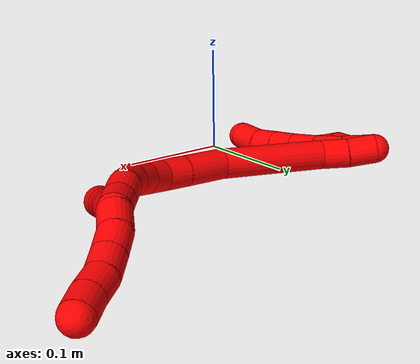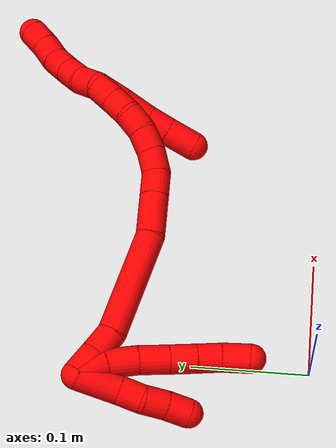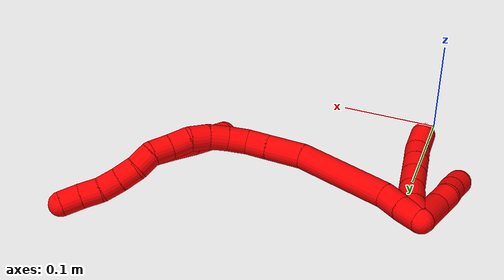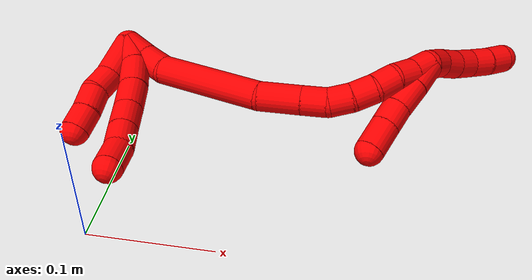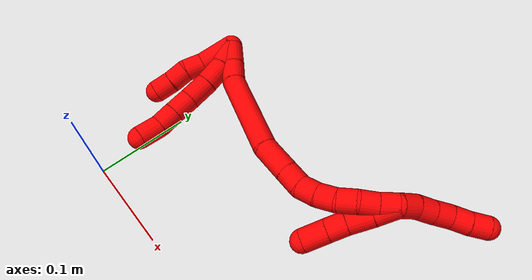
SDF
<sdf version="1.7">
 <world name="default">
  <model name="2">
   <static>0</static>
   <link name="2">
    <collision name="collision-cylinder-e_1_2_8">
     <pose>0.006587 0.002177 -0.011429 -2.95335 0.515194 -2.45344</pose>
     <geometry><cylinder><radius>0.0125</radius><length>0.02674</length></cylinder></geometry>
     <surface>
      <friction><ode><mu>1.16</mu><mu2>1.16</mu2><slip1>0</slip1><slip2>0</slip2></ode></friction>
      <contact><ode><kp>1e+06</kp><kd>1</kd><max_vel>0</max_vel><min_depth>0.001</min_depth></ode></contact>
     </surface>
    </collision>
    <visual name="visual-cylinder-e_1_2_8">
     <pose>0.006587 0.002177 -0.011429 -2.95335 0.515194 -2.45344</pose>
     <geometry><cylinder><radius>0.0125</radius><length>0.02674</length></cylinder></geometry>
     <material><ambient>1 0 0 1</ambient></material>
    </visual>
    <collision name="collision-cylinder-e_2_8_9">
     <pose>0.017212 0.004337 -0.036058 3.14023 0.29683 3.13248</pose>
     <geometry><cylinder><radius>0.0125</radius><length>0.027607</length></cylinder></geometry>
     <surface>
      <friction><ode><mu>1.16</mu><mu2>1.16</mu2><slip1>0</slip1><slip2>0</slip2></ode></friction>
      <contact><ode><kp>1e+06</kp><kd>1</kd><max_vel>0</max_vel><min_depth>0.001</min_depth></ode></contact>
     </surface>
    </collision>
    <visual name="visual-cylinder-e_2_8_9">
     <pose>0.017212 0.004337 -0.036058 3.14023 0.29683 3.13248</pose>
     <geometry><cylinder><radius>0.0125</radius><length>0.027607</length></cylinder></geometry>
     <material><ambient>1 0 0 1</ambient></material>
    </visual>
    <collision name="collision-cylinder-e_3_9_10">
     <pose>0.024337 0.003219 -0.062146 3.05645 0.234308 2.44705</pose>
     <geometry><cylinder><radius>0.0125</radius><length>0.026596</length></cylinder></geometry>
     <surface>
      <friction><ode><mu>1.16</mu><mu2>1.16</mu2><slip1>0</slip1><slip2>0</slip2></ode></friction>
      <contact><ode><kp>1e+06</kp><kd>1</kd><max_vel>0</max_vel><min_depth>0.001</min_depth></ode></contact>
     </surface>
    </collision>
    <visual name="visual-cylinder-e_3_9_10">
     <pose>0.024337 0.003219 -0.062146 3.05645 0.234308 2.44705</pose>
     <geometry><cylinder><radius>0.0125</radius><length>0.026596</length></cylinder></geometry>
     <material><ambient>1 0 0 1</ambient></material>
    </visual>
    <collision name="collision-cylinder-e_4_10_11">
     <pose>0.030264 0.00081 -0.086075 3.02362 0.25003 2.26303</pose>
     <geometry><cylinder><radius>0.0125</radius><length>0.022951</length></cylinder></geometry>
     <surface>
      <friction><ode><mu>1.16</mu><mu2>1.16</mu2><slip1>0</slip1><slip2>0</slip2></ode></friction>
      <contact><ode><kp>1e+06</kp><kd>1</kd><max_vel>0</max_vel><min_depth>0.001</min_depth></ode></contact>
     </surface>
    </collision>
    <visual name="visual-cylinder-e_4_10_11">
     <pose>0.030264 0.00081 -0.086075 3.02362 0.25003 2.26303</pose>
     <geometry><cylinder><radius>0.0125</radius><length>0.022951</length></cylinder></geometry>
     <material><ambient>1 0 0 1</ambient></material>
    </visual>
    <collision name="collision-cylinder-e_5_11_12">
     <pose>0.035826 -0.001516 -0.107429 3.04329 0.256923 2.41386</pose>
     <geometry><cylinder><radius>0.0125</radius><length>0.021429</length></cylinder></geometry>
     <surface>
      <friction><ode><mu>1.16</mu><mu2>1.16</mu2><slip1>0</slip1><slip2>0</slip2></ode></friction>
      <contact><ode><kp>1e+06</kp><kd>1</kd><max_vel>0</max_vel><min_depth>0.001</min_depth></ode></contact>
     </surface>
    </collision>
    <visual name="visual-cylinder-e_5_11_12">
     <pose>0.035826 -0.001516 -0.107429 3.04329 0.256923 2.41386</pose>
     <geometry><cylinder><radius>0.0125</radius><length>0.021429</length></cylinder></geometry>
     <material><ambient>1 0 0 1</ambient></material>
    </visual>
    <collision name="collision-cylinder-e_6_12_6">
     <pose>0.041182 -0.006345 -0.129177 2.81984 0.215057 1.17396</pose>
     <geometry><cylinder><radius>0.0125</radius><length>0.024677</length></cylinder></geometry>
     <surface>
      <friction><ode><mu>1.16</mu><mu2>1.16</mu2><slip1>0</slip1><slip2>0</slip2></ode></friction>
      <contact><ode><kp>1e+06</kp><kd>1</kd><max_vel>0</max_vel><min_depth>0.001</min_depth></ode></contact>
     </surface>
    </collision>
    <visual name="visual-cylinder-e_6_12_6">
     <pose>0.041182 -0.006345 -0.129177 2.81984 0.215057 1.17396</pose>
     <geometry><cylinder><radius>0.0125</radius><length>0.024677</length></cylinder></geometry>
     <material><ambient>1 0 0 1</ambient></material>
    </visual>
    <collision name="collision-cylinder-e_1_2_13">
     <pose>-0.002371 -0.002314 -0.018689 3.01841 -0.125273 -1.58767</pose>
     <geometry><cylinder><radius>0.0125</radius><length>0.03796</length></cylinder></geometry>
     <surface>
      <friction><ode><mu>1.16</mu><mu2>1.16</mu2><slip1>0</slip1><slip2>0</slip2></ode></friction>
      <contact><ode><kp>1e+06</kp><kd>1</kd><max_vel>0</max_vel><min_depth>0.001</min_depth></ode></contact>
     </surface>
    </collision>
    <visual name="visual-cylinder-e_1_2_13">
     <pose>-0.002371 -0.002314 -0.018689 3.01841 -0.125273 -1.58767</pose>
     <geometry><cylinder><radius>0.0125</radius><length>0.03796</length></cylinder></geometry>
     <material><ambient>1 0 0 1</ambient></material>
    </visual>
    <collision name="collision-cylinder-e_2_13_14">
     <pose>-0.006031 -0.00786 -0.047244 2.82501 -0.123405 -0.738566</pose>
     <geometry><cylinder><radius>0.0125</radius><length>0.020924</length></cylinder></geometry>
     <surface>
      <friction><ode><mu>1.16</mu><mu2>1.16</mu2><slip1>0</slip1><slip2>0</slip2></ode></friction>
      <contact><ode><kp>1e+06</kp><kd>1</kd><max_vel>0</max_vel><min_depth>0.001</min_depth></ode></contact>
     </surface>
    </collision>
    <visual name="visual-cylinder-e_2_13_14">
     <pose>-0.006031 -0.00786 -0.047244 2.82501 -0.123405 -0.738566</pose>
     <geometry><cylinder><radius>0.0125</radius><length>0.020924</length></cylinder></geometry>
     <material><ambient>1 0 0 1</ambient></material>
    </visual>
    <collision name="collision-cylinder-e_3_14_15">
     <pose>-0.007892 -0.011283 -0.067432 3.12311 -0.05548 -2.49856</pose>
     <geometry><cylinder><radius>0.0125</radius><length>0.020681</length></cylinder></geometry>
     <surface>
      <friction><ode><mu>1.16</mu><mu2>1.16</mu2><slip1>0</slip1><slip2>0</slip2></ode></friction>
      <contact><ode><kp>1e+06</kp><kd>1</kd><max_vel>0</max_vel><min_depth>0.001</min_depth></ode></contact>
     </surface>
    </collision>
    <visual name="visual-cylinder-e_3_14_15">
     <pose>-0.007892 -0.011283 -0.067432 3.12311 -0.05548 -2.49856</pose>
     <geometry><cylinder><radius>0.0125</radius><length>0.020681</length></cylinder></geometry>
     <material><ambient>1 0 0 1</ambient></material>
    </visual>
    <collision name="collision-cylinder-e_4_15_5">
     <pose>-0.009837 -0.012439 -0.087834 3.04607 -0.134673 -1.90843</pose>
     <geometry><cylinder><radius>0.0125</radius><length>0.020436</length></cylinder></geometry>
     <surface>
      <friction><ode><mu>1.16</mu><mu2>1.16</mu2><slip1>0</slip1><slip2>0</slip2></ode></friction>
      <contact><ode><kp>1e+06</kp><kd>1</kd><max_vel>0</max_vel><min_depth>0.001</min_depth></ode></contact>
     </surface>
    </collision>
    <visual name="visual-cylinder-e_4_15_5">
     <pose>-0.009837 -0.012439 -0.087834 3.04607 -0.134673 -1.90843</pose>
     <geometry><cylinder><radius>0.0125</radius><length>0.020436</length></cylinder></geometry>
     <material><ambient>1 0 0 1</ambient></material>
    </visual>
    <collision name="collision-cylinder-e_1_2_16">
     <pose>0.009196 0.004979 -0.006583 -2.49408 0.839332 -1.85191</pose>
     <geometry><cylinder><radius>0.0125</radius><length>0.024715</length></cylinder></geometry>
     <surface>
      <friction><ode><mu>1.16</mu><mu2>1.16</mu2><slip1>0</slip1><slip2>0</slip2></ode></friction>
      <contact><ode><kp>1e+06</kp><kd>1</kd><max_vel>0</max_vel><min_depth>0.001</min_depth></ode></contact>
     </surface>
    </collision>
    <visual name="visual-cylinder-e_1_2_16">
     <pose>0.009196 0.004979 -0.006583 -2.49408 0.839332 -1.85191</pose>
     <geometry><cylinder><radius>0.0125</radius><length>0.024715</length></cylinder></geometry>
     <material><ambient>1 0 0 1</ambient></material>
    </visual>
    <collision name="collision-cylinder-e_2_16_17">
     <pose>0.02781 0.013677 -0.019314 -2.59754 0.919094 -2.11507</pose>
     <geometry><cylinder><radius>0.0125</radius><length>0.023691</length></cylinder></geometry>
     <surface>
      <friction><ode><mu>1.16</mu><mu2>1.16</mu2><slip1>0</slip1><slip2>0</slip2></ode></friction>
      <contact><ode><kp>1e+06</kp><kd>1</kd><max_vel>0</max_vel><min_depth>0.001</min_depth></ode></contact>
     </surface>
    </collision>
    <visual name="visual-cylinder-e_2_16_17">
     <pose>0.02781 0.013677 -0.019314 -2.59754 0.919094 -2.11507</pose>
     <geometry><cylinder><radius>0.0125</radius><length>0.023691</length></cylinder></geometry>
     <material><ambient>1 0 0 1</ambient></material>
    </visual>
    <collision name="collision-cylinder-e_3_17_18">
     <pose>0.078399 0.036078 -0.036243 -2.09422 1.0882 -1.61738</pose>
     <geometry><cylinder><radius>0.0125</radius><length>0.092959</length></cylinder></geometry>
     <surface>
      <friction><ode><mu>1.16</mu><mu2>1.16</mu2><slip1>0</slip1><slip2>0</slip2></ode></friction>
      <contact><ode><kp>1e+06</kp><kd>1</kd><max_vel>0</max_vel><min_depth>0.001</min_depth></ode></contact>
     </surface>
    </collision>
    <visual name="visual-cylinder-e_3_17_18">
     <pose>0.078399 0.036078 -0.036243 -2.09422 1.0882 -1.61738</pose>
     <geometry><cylinder><radius>0.0125</radius><length>0.092959</length></cylinder></geometry>
     <material><ambient>1 0 0 1</ambient></material>
    </visual>
    <collision name="collision-cylinder-e_4_18_19">
     <pose>0.135441 0.063769 -0.046781 -1.54372 1.05435 -1.03095</pose>
     <geometry><cylinder><radius>0.0125</radius><length>0.0365</length></cylinder></geometry>
     <surface>
      <friction><ode><mu>1.16</mu><mu2>1.16</mu2><slip1>0</slip1><slip2>0</slip2></ode></friction>
      <contact><ode><kp>1e+06</kp><kd>1</kd><max_vel>0</max_vel><min_depth>0.001</min_depth></ode></contact>
     </surface>
    </collision>
    <visual name="visual-cylinder-e_4_18_19">
     <pose>0.135441 0.063769 -0.046781 -1.54372 1.05435 -1.03095</pose>
     <geometry><cylinder><radius>0.0125</radius><length>0.0365</length></cylinder></geometry>
     <material><ambient>1 0 0 1</ambient></material>
    </visual>
    <collision name="collision-cylinder-e_5_19_20">
     <pose>0.160909 0.078086 -0.04634 -1.53373 1.0653 -1.03316</pose>
     <geometry><cylinder><radius>0.0125</radius><length>0.021942</length></cylinder></geometry>
     <surface>
      <friction><ode><mu>1.16</mu><mu2>1.16</mu2><slip1>0</slip1><slip2>0</slip2></ode></friction>
      <contact><ode><kp>1e+06</kp><kd>1</kd><max_vel>0</max_vel><min_depth>0.001</min_depth></ode></contact>
     </surface>
    </collision>
    <visual name="visual-cylinder-e_5_19_20">
     <pose>0.160909 0.078086 -0.04634 -1.53373 1.0653 -1.03316</pose>
     <geometry><cylinder><radius>0.0125</radius><length>0.021942</length></cylinder></geometry>
     <material><ambient>1 0 0 1</ambient></material>
    </visual>
    <collision name="collision-cylinder-e_6_20_21">
     <pose>0.178879 0.08771 -0.042596 -0.882612 0.982385 -0.495007</pose>
     <geometry><cylinder><radius>0.0125</radius><length>0.020127</length></cylinder></geometry>
     <surface>
      <friction><ode><mu>1.16</mu><mu2>1.16</mu2><slip1>0</slip1><slip2>0</slip2></ode></friction>
      <contact><ode><kp>1e+06</kp><kd>1</kd><max_vel>0</max_vel><min_depth>0.001</min_depth></ode></contact>
     </surface>
    </collision>
    <visual name="visual-cylinder-e_6_20_21">
     <pose>0.178879 0.08771 -0.042596 -0.882612 0.982385 -0.495007</pose>
     <geometry><cylinder><radius>0.0125</radius><length>0.020127</length></cylinder></geometry>
     <material><ambient>1 0 0 1</ambient></material>
    </visual>
    <collision name="collision-cylinder-e_7_21_22">
     <pose>0.194894 0.095812 -0.033823 -0.62728 0.869642 -0.299048</pose>
     <geometry><cylinder><radius>0.0125</radius><length>0.020006</length></cylinder></geometry>
     <surface>
      <friction><ode><mu>1.16</mu><mu2>1.16</mu2><slip1>0</slip1><slip2>0</slip2></ode></friction>
      <contact><ode><kp>1e+06</kp><kd>1</kd><max_vel>0</max_vel><min_depth>0.001</min_depth></ode></contact>
     </surface>
    </collision>
    <visual name="visual-cylinder-e_7_21_22">
     <pose>0.194894 0.095812 -0.033823 -0.62728 0.869642 -0.299048</pose>
     <geometry><cylinder><radius>0.0125</radius><length>0.020006</length></cylinder></geometry>
     <material><ambient>1 0 0 1</ambient></material>
    </visual>
    <collision name="collision-cylinder-e_8_22_23">
     <pose>0.208255 0.104047 -0.02167 -0.570686 0.606984 -0.183219</pose>
     <geometry><cylinder><radius>0.0125</radius><length>0.020049</length></cylinder></geometry>
     <surface>
      <friction><ode><mu>1.16</mu><mu2>1.16</mu2><slip1>0</slip1><slip2>0</slip2></ode></friction>
      <contact><ode><kp>1e+06</kp><kd>1</kd><max_vel>0</max_vel><min_depth>0.001</min_depth></ode></contact>
     </surface>
    </collision>
    <visual name="visual-cylinder-e_8_22_23">
     <pose>0.208255 0.104047 -0.02167 -0.570686 0.606984 -0.183219</pose>
     <geometry><cylinder><radius>0.0125</radius><length>0.020049</length></cylinder></geometry>
     <material><ambient>1 0 0 1</ambient></material>
    </visual>
    <collision name="collision-cylinder-e_9_23_24">
     <pose>0.217922 0.115121 -0.008374 -0.805372 0.405868 -0.174851</pose>
     <geometry><cylinder><radius>0.0125</radius><length>0.020004</length></cylinder></geometry>
     <surface>
      <friction><ode><mu>1.16</mu><mu2>1.16</mu2><slip1>0</slip1><slip2>0</slip2></ode></friction>
      <contact><ode><kp>1e+06</kp><kd>1</kd><max_vel>0</max_vel><min_depth>0.001</min_depth></ode></contact>
     </surface>
    </collision>
    <visual name="visual-cylinder-e_9_23_24">
     <pose>0.217922 0.115121 -0.008374 -0.805372 0.405868 -0.174851</pose>
     <geometry><cylinder><radius>0.0125</radius><length>0.020004</length></cylinder></geometry>
     <material><ambient>1 0 0 1</ambient></material>
    </visual>
    <collision name="collision-cylinder-e_10_24_1">
     <pose>0.225936 0.12732 0.005238 -0.655644 0.418497 -0.144192</pose>
     <geometry><cylinder><radius>0.0125</radius><length>0.020007</length></cylinder></geometry>
     <surface>
      <friction><ode><mu>1.16</mu><mu2>1.16</mu2><slip1>0</slip1><slip2>0</slip2></ode></friction>
      <contact><ode><kp>1e+06</kp><kd>1</kd><max_vel>0</max_vel><min_depth>0.001</min_depth></ode></contact>
     </surface>
    </collision>
    <visual name="visual-cylinder-e_10_24_1">
     <pose>0.225936 0.12732 0.005238 -0.655644 0.418497 -0.144192</pose>
     <geometry><cylinder><radius>0.0125</radius><length>0.020007</length></cylinder></geometry>
     <material><ambient>1 0 0 1</ambient></material>
    </visual>
    <collision name="collision-cylinder-e_1_1_25">
     <pose>0.230411 0.140755 0.018648 -0.905778 0.040968 -0.019938</pose>
     <geometry><cylinder><radius>0.0125</radius><length>0.02</length></cylinder></geometry>
     <surface>
      <friction><ode><mu>1.16</mu><mu2>1.16</mu2><slip1>0</slip1><slip2>0</slip2></ode></friction>
      <contact><ode><kp>1e+06</kp><kd>1</kd><max_vel>0</max_vel><min_depth>0.001</min_depth></ode></contact>
     </surface>
    </collision>
    <visual name="visual-cylinder-e_1_1_25">
     <pose>0.230411 0.140755 0.018648 -0.905778 0.040968 -0.019938</pose>
     <geometry><cylinder><radius>0.0125</radius><length>0.02</length></cylinder></geometry>
     <material><ambient>1 0 0 1</ambient></material>
    </visual>
    <collision name="collision-cylinder-e_2_25_26">
     <pose>0.233215 0.157093 0.029551 -1.06108 0.241783 -0.142295</pose>
     <geometry><cylinder><radius>0.0125</radius><length>0.02</length></cylinder></geometry>
     <surface>
      <friction><ode><mu>1.16</mu><mu2>1.16</mu2><slip1>0</slip1><slip2>0</slip2></ode></friction>
      <contact><ode><kp>1e+06</kp><kd>1</kd><max_vel>0</max_vel><min_depth>0.001</min_depth></ode></contact>
     </surface>
    </collision>
    <visual name="visual-cylinder-e_2_25_26">
     <pose>0.233215 0.157093 0.029551 -1.06108 0.241783 -0.142295</pose>
     <geometry><cylinder><radius>0.0125</radius><length>0.02</length></cylinder></geometry>
     <material><ambient>1 0 0 1</ambient></material>
    </visual>
    <collision name="collision-cylinder-e_3_26_27">
     <pose>0.23865 0.173438 0.039657 -0.972154 0.308923 -0.164163</pose>
     <geometry><cylinder><radius>0.0125</radius><length>0.02</length></cylinder></geometry>
     <surface>
      <friction><ode><mu>1.16</mu><mu2>1.16</mu2><slip1>0</slip1><slip2>0</slip2></ode></friction>
      <contact><ode><kp>1e+06</kp><kd>1</kd><max_vel>0</max_vel><min_depth>0.001</min_depth></ode></contact>
     </surface>
    </collision>
    <visual name="visual-cylinder-e_3_26_27">
     <pose>0.23865 0.173438 0.039657 -0.972154 0.308923 -0.164163</pose>
     <geometry><cylinder><radius>0.0125</radius><length>0.02</length></cylinder></geometry>
     <material><ambient>1 0 0 1</ambient></material>
    </visual>
    <collision name="collision-cylinder-e_4_27_28">
     <pose>0.24667 0.188533 0.04982 -0.984945 0.52136 -0.284328</pose>
     <geometry><cylinder><radius>0.0125</radius><length>0.02</length></cylinder></geometry>
     <surface>
      <friction><ode><mu>1.16</mu><mu2>1.16</mu2><slip1>0</slip1><slip2>0</slip2></ode></friction>
      <contact><ode><kp>1e+06</kp><kd>1</kd><max_vel>0</max_vel><min_depth>0.001</min_depth></ode></contact>
     </surface>
    </collision>
    <visual name="visual-cylinder-e_4_27_28">
     <pose>0.24667 0.188533 0.04982 -0.984945 0.52136 -0.284328</pose>
     <geometry><cylinder><radius>0.0125</radius><length>0.02</length></cylinder></geometry>
     <material><ambient>1 0 0 1</ambient></material>
    </visual>
    <collision name="collision-cylinder-e_5_28_4">
     <pose>0.255981 0.202757 0.060295 -0.888962 0.447857 -0.216093</pose>
     <geometry><cylinder><radius>0.0125</radius><length>0.02</length></cylinder></geometry>
     <surface>
      <friction><ode><mu>1.16</mu><mu2>1.16</mu2><slip1>0</slip1><slip2>0</slip2></ode></friction>
      <contact><ode><kp>1e+06</kp><kd>1</kd><max_vel>0</max_vel><min_depth>0.001</min_depth></ode></contact>
     </surface>
    </collision>
    <visual name="visual-cylinder-e_5_28_4">
     <pose>0.255981 0.202757 0.060295 -0.888962 0.447857 -0.216093</pose>
     <geometry><cylinder><radius>0.0125</radius><length>0.02</length></cylinder></geometry>
     <material><ambient>1 0 0 1</ambient></material>
    </visual>
    <collision name="collision-cylinder-e_1_1_29">
     <pose>0.225789 0.130312 0.000494 2.92957 -0.330852 -2.00668</pose>
     <geometry><cylinder><radius>0.0125</radius><length>0.025934</length></cylinder></geometry>
     <surface>
      <friction><ode><mu>1.16</mu><mu2>1.16</mu2><slip1>0</slip1><slip2>0</slip2></ode></friction>
      <contact><ode><kp>1e+06</kp><kd>1</kd><max_vel>0</max_vel><min_depth>0.001</min_depth></ode></contact>
     </surface>
    </collision>
    <visual name="visual-cylinder-e_1_1_29">
     <pose>0.225789 0.130312 0.000494 2.92957 -0.330852 -2.00668</pose>
     <geometry><cylinder><radius>0.0125</radius><length>0.025934</length></cylinder></geometry>
     <material><ambient>1 0 0 1</ambient></material>
    </visual>
    <collision name="collision-cylinder-e_2_29_30">
     <pose>0.216774 0.124758 -0.023547 2.89972 -0.369207 -1.98767</pose>
     <geometry><cylinder><radius>0.0125</radius><length>0.02662</length></cylinder></geometry>
     <surface>
      <friction><ode><mu>1.16</mu><mu2>1.16</mu2><slip1>0</slip1><slip2>0</slip2></ode></friction>
      <contact><ode><kp>1e+06</kp><kd>1</kd><max_vel>0</max_vel><min_depth>0.001</min_depth></ode></contact>
     </surface>
    </collision>
    <visual name="visual-cylinder-e_2_29_30">
     <pose>0.216774 0.124758 -0.023547 2.89972 -0.369207 -1.98767</pose>
     <geometry><cylinder><radius>0.0125</radius><length>0.02662</length></cylinder></geometry>
     <material><ambient>1 0 0 1</ambient></material>
    </visual>
    <collision name="collision-cylinder-e_3_30_31">
     <pose>0.208861 0.119893 -0.045246 2.94794 -0.306338 -2.01839</pose>
     <geometry><cylinder><radius>0.0125</radius><length>0.020623</length></cylinder></geometry>
     <surface>
      <friction><ode><mu>1.16</mu><mu2>1.16</mu2><slip1>0</slip1><slip2>0</slip2></ode></friction>
      <contact><ode><kp>1e+06</kp><kd>1</kd><max_vel>0</max_vel><min_depth>0.001</min_depth></ode></contact>
     </surface>
    </collision>
    <visual name="visual-cylinder-e_3_30_31">
     <pose>0.208861 0.119893 -0.045246 2.94794 -0.306338 -2.01839</pose>
     <geometry><cylinder><radius>0.0125</radius><length>0.020623</length></cylinder></geometry>
     <material><ambient>1 0 0 1</ambient></material>
    </visual>
    <collision name="collision-cylinder-e_4_31_3">
     <pose>0.20203 0.115388 -0.067512 2.93743 -0.281133 -1.88838</pose>
     <geometry><cylinder><radius>0.0125</radius><length>0.026823</length></cylinder></geometry>
     <surface>
      <friction><ode><mu>1.16</mu><mu2>1.16</mu2><slip1>0</slip1><slip2>0</slip2></ode></friction>
      <contact><ode><kp>1e+06</kp><kd>1</kd><max_vel>0</max_vel><min_depth>0.001</min_depth></ode></contact>
     </surface>
    </collision>
    <visual name="visual-cylinder-e_4_31_3">
     <pose>0.20203 0.115388 -0.067512 2.93743 -0.281133 -1.88838</pose>
     <geometry><cylinder><radius>0.0125</radius><length>0.026823</length></cylinder></geometry>
     <material><ambient>1 0 0 1</ambient></material>
    </visual>
    <collision name="collision-sphere-3">
     <pose>0.198309 0.112776 -0.080129 0 -0 0</pose>
     <geometry><sphere><radius>0.0125</radius></sphere></geometry>
     <surface>
      <friction><ode><mu>1.16</mu><mu2>1.16</mu2><slip1>0</slip1><slip2>0</slip2></ode></friction>
      <contact><ode><kp>1e+06</kp><kd>1</kd><max_vel>0</max_vel><min_depth>0.001</min_depth></ode></contact>
     </surface>
    </collision>
    <visual name="visual-sphere-3">
     <pose>0.198309 0.112776 -0.080129 0 -0 0</pose>
     <geometry><sphere><radius>0.0125</radius></sphere></geometry>
     <material><ambient>1 0 0 1</ambient></material>
    </visual>
    <collision name="collision-sphere-31">
     <pose>0.205751 0.118001 -0.054894 0 -0 0</pose>
     <geometry><sphere><radius>0.0125</radius></sphere></geometry>
     <surface>
      <friction><ode><mu>1.16</mu><mu2>1.16</mu2><slip1>0</slip1><slip2>0</slip2></ode></friction>
      <contact><ode><kp>1e+06</kp><kd>1</kd><max_vel>0</max_vel><min_depth>0.001</min_depth></ode></contact>
     </surface>
    </collision>
    <visual name="visual-sphere-31">
     <pose>0.205751 0.118001 -0.054894 0 -0 0</pose>
     <geometry><sphere><radius>0.0125</radius></sphere></geometry>
     <material><ambient>1 0 0 1</ambient></material>
    </visual>
    <collision name="collision-sphere-30">
     <pose>0.21197 0.121785 -0.035599 0 -0 0</pose>
     <geometry><sphere><radius>0.0125</radius></sphere></geometry>
     <surface>
      <friction><ode><mu>1.16</mu><mu2>1.16</mu2><slip1>0</slip1><slip2>0</slip2></ode></friction>
      <contact><ode><kp>1e+06</kp><kd>1</kd><max_vel>0</max_vel><min_depth>0.001</min_depth></ode></contact>
     </surface>
    </collision>
    <visual name="visual-sphere-30">
     <pose>0.21197 0.121785 -0.035599 0 -0 0</pose>
     <geometry><sphere><radius>0.0125</radius></sphere></geometry>
     <material><ambient>1 0 0 1</ambient></material>
    </visual>
    <collision name="collision-sphere-29">
     <pose>0.221577 0.127731 -0.011495 0 -0 0</pose>
     <geometry><sphere><radius>0.0125</radius></sphere></geometry>
     <surface>
      <friction><ode><mu>1.16</mu><mu2>1.16</mu2><slip1>0</slip1><slip2>0</slip2></ode></friction>
      <contact><ode><kp>1e+06</kp><kd>1</kd><max_vel>0</max_vel><min_depth>0.001</min_depth></ode></contact>
     </surface>
    </collision>
    <visual name="visual-sphere-29">
     <pose>0.221577 0.127731 -0.011495 0 -0 0</pose>
     <geometry><sphere><radius>0.0125</radius></sphere></geometry>
     <material><ambient>1 0 0 1</ambient></material>
    </visual>
    <collision name="collision-sphere-4">
     <pose>0.260312 0.209755 0.065976 0 -0 0</pose>
     <geometry><sphere><radius>0.0125</radius></sphere></geometry>
     <surface>
      <friction><ode><mu>1.16</mu><mu2>1.16</mu2><slip1>0</slip1><slip2>0</slip2></ode></friction>
      <contact><ode><kp>1e+06</kp><kd>1</kd><max_vel>0</max_vel><min_depth>0.001</min_depth></ode></contact>
     </surface>
    </collision>
    <visual name="visual-sphere-4">
     <pose>0.260312 0.209755 0.065976 0 -0 0</pose>
     <geometry><sphere><radius>0.0125</radius></sphere></geometry>
     <material><ambient>1 0 0 1</ambient></material>
    </visual>
    <collision name="collision-sphere-28">
     <pose>0.251651 0.195758 0.054615 0 -0 0</pose>
     <geometry><sphere><radius>0.0125</radius></sphere></geometry>
     <surface>
      <friction><ode><mu>1.16</mu><mu2>1.16</mu2><slip1>0</slip1><slip2>0</slip2></ode></friction>
      <contact><ode><kp>1e+06</kp><kd>1</kd><max_vel>0</max_vel><min_depth>0.001</min_depth></ode></contact>
     </surface>
    </collision>
    <visual name="visual-sphere-28">
     <pose>0.251651 0.195758 0.054615 0 -0 0</pose>
     <geometry><sphere><radius>0.0125</radius></sphere></geometry>
     <material><ambient>1 0 0 1</ambient></material>
    </visual>
    <collision name="collision-sphere-27">
     <pose>0.24169 0.181308 0.045025 0 -0 0</pose>
     <geometry><sphere><radius>0.0125</radius></sphere></geometry>
     <surface>
      <friction><ode><mu>1.16</mu><mu2>1.16</mu2><slip1>0</slip1><slip2>0</slip2></ode></friction>
      <contact><ode><kp>1e+06</kp><kd>1</kd><max_vel>0</max_vel><min_depth>0.001</min_depth></ode></contact>
     </surface>
    </collision>
    <visual name="visual-sphere-27">
     <pose>0.24169 0.181308 0.045025 0 -0 0</pose>
     <geometry><sphere><radius>0.0125</radius></sphere></geometry>
     <material><ambient>1 0 0 1</ambient></material>
    </visual>
    <collision name="collision-sphere-26">
     <pose>0.235609 0.165568 0.034289 0 -0 0</pose>
     <geometry><sphere><radius>0.0125</radius></sphere></geometry>
     <surface>
      <friction><ode><mu>1.16</mu><mu2>1.16</mu2><slip1>0</slip1><slip2>0</slip2></ode></friction>
      <contact><ode><kp>1e+06</kp><kd>1</kd><max_vel>0</max_vel><min_depth>0.001</min_depth></ode></contact>
     </surface>
    </collision>
    <visual name="visual-sphere-26">
     <pose>0.235609 0.165568 0.034289 0 -0 0</pose>
     <geometry><sphere><radius>0.0125</radius></sphere></geometry>
     <material><ambient>1 0 0 1</ambient></material>
    </visual>
    <collision name="collision-sphere-25">
     <pose>0.230821 0.148618 0.024814 0 -0 0</pose>
     <geometry><sphere><radius>0.0125</radius></sphere></geometry>
     <surface>
      <friction><ode><mu>1.16</mu><mu2>1.16</mu2><slip1>0</slip1><slip2>0</slip2></ode></friction>
      <contact><ode><kp>1e+06</kp><kd>1</kd><max_vel>0</max_vel><min_depth>0.001</min_depth></ode></contact>
     </surface>
    </collision>
    <visual name="visual-sphere-25">
     <pose>0.230821 0.148618 0.024814 0 -0 0</pose>
     <geometry><sphere><radius>0.0125</radius></sphere></geometry>
     <material><ambient>1 0 0 1</ambient></material>
    </visual>
    <collision name="collision-sphere-1">
     <pose>0.230001 0.132893 0.012483 0 -0 0</pose>
     <geometry><sphere><radius>0.0125</radius></sphere></geometry>
     <surface>
      <friction><ode><mu>1.16</mu><mu2>1.16</mu2><slip1>0</slip1><slip2>0</slip2></ode></friction>
      <contact><ode><kp>1e+06</kp><kd>1</kd><max_vel>0</max_vel><min_depth>0.001</min_depth></ode></contact>
     </surface>
    </collision>
    <visual name="visual-sphere-1">
     <pose>0.230001 0.132893 0.012483 0 -0 0</pose>
     <geometry><sphere><radius>0.0125</radius></sphere></geometry>
     <material><ambient>1 0 0 1</ambient></material>
    </visual>
    <collision name="collision-sphere-24">
     <pose>0.221871 0.121748 -0.002007 0 -0 0</pose>
     <geometry><sphere><radius>0.0125</radius></sphere></geometry>
     <surface>
      <friction><ode><mu>1.16</mu><mu2>1.16</mu2><slip1>0</slip1><slip2>0</slip2></ode></friction>
      <contact><ode><kp>1e+06</kp><kd>1</kd><max_vel>0</max_vel><min_depth>0.001</min_depth></ode></contact>
     </surface>
    </collision>
    <visual name="visual-sphere-24">
     <pose>0.221871 0.121748 -0.002007 0 -0 0</pose>
     <geometry><sphere><radius>0.0125</radius></sphere></geometry>
     <material><ambient>1 0 0 1</ambient></material>
    </visual>
    <collision name="collision-sphere-23">
     <pose>0.213973 0.108495 -0.014741 0 -0 0</pose>
     <geometry><sphere><radius>0.0125</radius></sphere></geometry>
     <surface>
      <friction><ode><mu>1.16</mu><mu2>1.16</mu2><slip1>0</slip1><slip2>0</slip2></ode></friction>
      <contact><ode><kp>1e+06</kp><kd>1</kd><max_vel>0</max_vel><min_depth>0.001</min_depth></ode></contact>
     </surface>
    </collision>
    <visual name="visual-sphere-23">
     <pose>0.213973 0.108495 -0.014741 0 -0 0</pose>
     <geometry><sphere><radius>0.0125</radius></sphere></geometry>
     <material><ambient>1 0 0 1</ambient></material>
    </visual>
    <collision name="collision-sphere-22">
     <pose>0.202537 0.099599 -0.028599 0 -0 0</pose>
     <geometry><sphere><radius>0.0125</radius></sphere></geometry>
     <surface>
      <friction><ode><mu>1.16</mu><mu2>1.16</mu2><slip1>0</slip1><slip2>0</slip2></ode></friction>
      <contact><ode><kp>1e+06</kp><kd>1</kd><max_vel>0</max_vel><min_depth>0.001</min_depth></ode></contact>
     </surface>
    </collision>
    <visual name="visual-sphere-22">
     <pose>0.202537 0.099599 -0.028599 0 -0 0</pose>
     <geometry><sphere><radius>0.0125</radius></sphere></geometry>
     <material><ambient>1 0 0 1</ambient></material>
    </visual>
    <collision name="collision-sphere-21">
     <pose>0.187251 0.092024 -0.039048 0 -0 0</pose>
     <geometry><sphere><radius>0.0125</radius></sphere></geometry>
     <surface>
      <friction><ode><mu>1.16</mu><mu2>1.16</mu2><slip1>0</slip1><slip2>0</slip2></ode></friction>
      <contact><ode><kp>1e+06</kp><kd>1</kd><max_vel>0</max_vel><min_depth>0.001</min_depth></ode></contact>
     </surface>
    </collision>
    <visual name="visual-sphere-21">
     <pose>0.187251 0.092024 -0.039048 0 -0 0</pose>
     <geometry><sphere><radius>0.0125</radius></sphere></geometry>
     <material><ambient>1 0 0 1</ambient></material>
    </visual>
    <collision name="collision-sphere-12">
     <pose>0.038549 -0.002533 -0.117742 0 -0 0</pose>
     <geometry><sphere><radius>0.0125</radius></sphere></geometry>
     <surface>
      <friction><ode><mu>1.16</mu><mu2>1.16</mu2><slip1>0</slip1><slip2>0</slip2></ode></friction>
      <contact><ode><kp>1e+06</kp><kd>1</kd><max_vel>0</max_vel><min_depth>0.001</min_depth></ode></contact>
     </surface>
    </collision>
    <visual name="visual-sphere-12">
     <pose>0.038549 -0.002533 -0.117742 0 -0 0</pose>
     <geometry><sphere><radius>0.0125</radius></sphere></geometry>
     <material><ambient>1 0 0 1</ambient></material>
    </visual>
    <collision name="collision-sphere-11">
     <pose>0.033103 -0.000499 -0.097116 0 -0 0</pose>
     <geometry><sphere><radius>0.0125</radius></sphere></geometry>
     <surface>
      <friction><ode><mu>1.16</mu><mu2>1.16</mu2><slip1>0</slip1><slip2>0</slip2></ode></friction>
      <contact><ode><kp>1e+06</kp><kd>1</kd><max_vel>0</max_vel><min_depth>0.001</min_depth></ode></contact>
     </surface>
    </collision>
    <visual name="visual-sphere-11">
     <pose>0.033103 -0.000499 -0.097116 0 -0 0</pose>
     <geometry><sphere><radius>0.0125</radius></sphere></geometry>
     <material><ambient>1 0 0 1</ambient></material>
    </visual>
    <collision name="collision-sphere-10">
     <pose>0.027425 0.002119 -0.075034 0 -0 0</pose>
     <geometry><sphere><radius>0.0125</radius></sphere></geometry>
     <surface>
      <friction><ode><mu>1.16</mu><mu2>1.16</mu2><slip1>0</slip1><slip2>0</slip2></ode></friction>
      <contact><ode><kp>1e+06</kp><kd>1</kd><max_vel>0</max_vel><min_depth>0.001</min_depth></ode></contact>
     </surface>
    </collision>
    <visual name="visual-sphere-10">
     <pose>0.027425 0.002119 -0.075034 0 -0 0</pose>
     <geometry><sphere><radius>0.0125</radius></sphere></geometry>
     <material><ambient>1 0 0 1</ambient></material>
    </visual>
    <collision name="collision-sphere-9">
     <pose>0.02125 0.004319 -0.049258 0 -0 0</pose>
     <geometry><sphere><radius>0.0125</radius></sphere></geometry>
     <surface>
      <friction><ode><mu>1.16</mu><mu2>1.16</mu2><slip1>0</slip1><slip2>0</slip2></ode></friction>
      <contact><ode><kp>1e+06</kp><kd>1</kd><max_vel>0</max_vel><min_depth>0.001</min_depth></ode></contact>
     </surface>
    </collision>
    <visual name="visual-sphere-9">
     <pose>0.02125 0.004319 -0.049258 0 -0 0</pose>
     <geometry><sphere><radius>0.0125</radius></sphere></geometry>
     <material><ambient>1 0 0 1</ambient></material>
    </visual>
    <collision name="collision-sphere-2">
     <geometry><sphere><radius>0.0125</radius></sphere></geometry>
     <surface>
      <friction><ode><mu>1.16</mu><mu2>1.16</mu2><slip1>0</slip1><slip2>0</slip2></ode></friction>
      <contact><ode><kp>1e+06</kp><kd>1</kd><max_vel>0</max_vel><min_depth>0.001</min_depth></ode></contact>
     </surface>
    </collision>
    <visual name="visual-sphere-2">
     <geometry><sphere><radius>0.0125</radius></sphere></geometry>
     <material><ambient>1 0 0 1</ambient></material>
    </visual>
    <collision name="collision-sphere-19">
     <pose>0.151311 0.072777 -0.046537 0 -0 0</pose>
     <geometry><sphere><radius>0.0125</radius></sphere></geometry>
     <surface>
      <friction><ode><mu>1.16</mu><mu2>1.16</mu2><slip1>0</slip1><slip2>0</slip2></ode></friction>
      <contact><ode><kp>1e+06</kp><kd>1</kd><max_vel>0</max_vel><min_depth>0.001</min_depth></ode></contact>
     </surface>
    </collision>
    <visual name="visual-sphere-19">
     <pose>0.151311 0.072777 -0.046537 0 -0 0</pose>
     <geometry><sphere><radius>0.0125</radius></sphere></geometry>
     <material><ambient>1 0 0 1</ambient></material>
    </visual>
    <collision name="collision-sphere-8">
     <pose>0.013175 0.004355 -0.022858 0 -0 0</pose>
     <geometry><sphere><radius>0.0125</radius></sphere></geometry>
     <surface>
      <friction><ode><mu>1.16</mu><mu2>1.16</mu2><slip1>0</slip1><slip2>0</slip2></ode></friction>
      <contact><ode><kp>1e+06</kp><kd>1</kd><max_vel>0</max_vel><min_depth>0.001</min_depth></ode></contact>
     </surface>
    </collision>
    <visual name="visual-sphere-8">
     <pose>0.013175 0.004355 -0.022858 0 -0 0</pose>
     <geometry><sphere><radius>0.0125</radius></sphere></geometry>
     <material><ambient>1 0 0 1</ambient></material>
    </visual>
    <collision name="collision-sphere-6">
     <pose>0.043815 -0.010156 -0.140613 0 -0 0</pose>
     <geometry><sphere><radius>0.0125</radius></sphere></geometry>
     <surface>
      <friction><ode><mu>1.16</mu><mu2>1.16</mu2><slip1>0</slip1><slip2>0</slip2></ode></friction>
      <contact><ode><kp>1e+06</kp><kd>1</kd><max_vel>0</max_vel><min_depth>0.001</min_depth></ode></contact>
     </surface>
    </collision>
    <visual name="visual-sphere-6">
     <pose>0.043815 -0.010156 -0.140613 0 -0 0</pose>
     <geometry><sphere><radius>0.0125</radius></sphere></geometry>
     <material><ambient>1 0 0 1</ambient></material>
    </visual>
    <collision name="collision-sphere-13">
     <pose>-0.004743 -0.004628 -0.037377 0 -0 0</pose>
     <geometry><sphere><radius>0.0125</radius></sphere></geometry>
     <surface>
      <friction><ode><mu>1.16</mu><mu2>1.16</mu2><slip1>0</slip1><slip2>0</slip2></ode></friction>
      <contact><ode><kp>1e+06</kp><kd>1</kd><max_vel>0</max_vel><min_depth>0.001</min_depth></ode></contact>
     </surface>
    </collision>
    <visual name="visual-sphere-13">
     <pose>-0.004743 -0.004628 -0.037377 0 -0 0</pose>
     <geometry><sphere><radius>0.0125</radius></sphere></geometry>
     <material><ambient>1 0 0 1</ambient></material>
    </visual>
    <collision name="collision-sphere-14">
     <pose>-0.007318 -0.011092 -0.05711 0 -0 0</pose>
     <geometry><sphere><radius>0.0125</radius></sphere></geometry>
     <surface>
      <friction><ode><mu>1.16</mu><mu2>1.16</mu2><slip1>0</slip1><slip2>0</slip2></ode></friction>
      <contact><ode><kp>1e+06</kp><kd>1</kd><max_vel>0</max_vel><min_depth>0.001</min_depth></ode></contact>
     </surface>
    </collision>
    <visual name="visual-sphere-14">
     <pose>-0.007318 -0.011092 -0.05711 0 -0 0</pose>
     <geometry><sphere><radius>0.0125</radius></sphere></geometry>
     <material><ambient>1 0 0 1</ambient></material>
    </visual>
    <collision name="collision-sphere-15">
     <pose>-0.008465 -0.011474 -0.077755 0 -0 0</pose>
     <geometry><sphere><radius>0.0125</radius></sphere></geometry>
     <surface>
      <friction><ode><mu>1.16</mu><mu2>1.16</mu2><slip1>0</slip1><slip2>0</slip2></ode></friction>
      <contact><ode><kp>1e+06</kp><kd>1</kd><max_vel>0</max_vel><min_depth>0.001</min_depth></ode></contact>
     </surface>
    </collision>
    <visual name="visual-sphere-15">
     <pose>-0.008465 -0.011474 -0.077755 0 -0 0</pose>
     <geometry><sphere><radius>0.0125</radius></sphere></geometry>
     <material><ambient>1 0 0 1</ambient></material>
    </visual>
    <collision name="collision-sphere-5">
     <pose>-0.011209 -0.013405 -0.097913 0 -0 0</pose>
     <geometry><sphere><radius>0.0125</radius></sphere></geometry>
     <surface>
      <friction><ode><mu>1.16</mu><mu2>1.16</mu2><slip1>0</slip1><slip2>0</slip2></ode></friction>
      <contact><ode><kp>1e+06</kp><kd>1</kd><max_vel>0</max_vel><min_depth>0.001</min_depth></ode></contact>
     </surface>
    </collision>
    <visual name="visual-sphere-5">
     <pose>-0.011209 -0.013405 -0.097913 0 -0 0</pose>
     <geometry><sphere><radius>0.0125</radius></sphere></geometry>
     <material><ambient>1 0 0 1</ambient></material>
    </visual>
    <collision name="collision-sphere-16">
     <pose>0.018393 0.009958 -0.013167 0 -0 0</pose>
     <geometry><sphere><radius>0.0125</radius></sphere></geometry>
     <surface>
      <friction><ode><mu>1.16</mu><mu2>1.16</mu2><slip1>0</slip1><slip2>0</slip2></ode></friction>
      <contact><ode><kp>1e+06</kp><kd>1</kd><max_vel>0</max_vel><min_depth>0.001</min_depth></ode></contact>
     </surface>
    </collision>
    <visual name="visual-sphere-16">
     <pose>0.018393 0.009958 -0.013167 0 -0 0</pose>
     <geometry><sphere><radius>0.0125</radius></sphere></geometry>
     <material><ambient>1 0 0 1</ambient></material>
    </visual>
    <collision name="collision-sphere-17">
     <pose>0.037228 0.017396 -0.025462 0 -0 0</pose>
     <geometry><sphere><radius>0.0125</radius></sphere></geometry>
     <surface>
      <friction><ode><mu>1.16</mu><mu2>1.16</mu2><slip1>0</slip1><slip2>0</slip2></ode></friction>
      <contact><ode><kp>1e+06</kp><kd>1</kd><max_vel>0</max_vel><min_depth>0.001</min_depth></ode></contact>
     </surface>
    </collision>
    <visual name="visual-sphere-17">
     <pose>0.037228 0.017396 -0.025462 0 -0 0</pose>
     <geometry><sphere><radius>0.0125</radius></sphere></geometry>
     <material><ambient>1 0 0 1</ambient></material>
    </visual>
    <collision name="collision-sphere-18">
     <pose>0.119571 0.05476 -0.047025 0 -0 0</pose>
     <geometry><sphere><radius>0.0125</radius></sphere></geometry>
     <surface>
      <friction><ode><mu>1.16</mu><mu2>1.16</mu2><slip1>0</slip1><slip2>0</slip2></ode></friction>
      <contact><ode><kp>1e+06</kp><kd>1</kd><max_vel>0</max_vel><min_depth>0.001</min_depth></ode></contact>
     </surface>
    </collision>
    <visual name="visual-sphere-18">
     <pose>0.119571 0.05476 -0.047025 0 -0 0</pose>
     <geometry><sphere><radius>0.0125</radius></sphere></geometry>
     <material><ambient>1 0 0 1</ambient></material>
    </visual>
    <collision name="collision-sphere-20">
     <pose>0.170508 0.083395 -0.046143 0 -0 0</pose>
     <geometry><sphere><radius>0.0125</radius></sphere></geometry>
     <surface>
      <friction><ode><mu>1.16</mu><mu2>1.16</mu2><slip1>0</slip1><slip2>0</slip2></ode></friction>
      <contact><ode><kp>1e+06</kp><kd>1</kd><max_vel>0</max_vel><min_depth>0.001</min_depth></ode></contact>
     </surface>
    </collision>
    <visual name="visual-sphere-20">
     <pose>0.170508 0.083395 -0.046143 0 -0 0</pose>
     <geometry><sphere><radius>0.0125</radius></sphere></geometry>
     <material><ambient>1 0 0 1</ambient></material>
    </visual>
    <inertial>
     <pose>0.114467 0.063111 -0.031267 0 -0 0</pose>
     <mass>0.75</mass>
     <inertia>
      <ixx>-3.4e-05</ixx>
      <ixy>0</ixy>
      <ixz>0</ixz>
      <iyy>4.8e-05</iyy>
      <iyz>0</iyz>
      <izz>-0.000138</izz>
     </inertia>
    </inertial>
   </link>
   <pose>-0.026441 0.193601 0.035753 -1.21507 -0.510673 -0.197938</pose>
  </model>
 </world>
</sdf>
